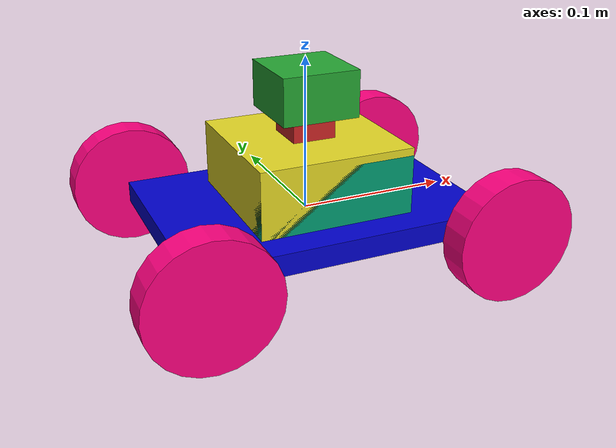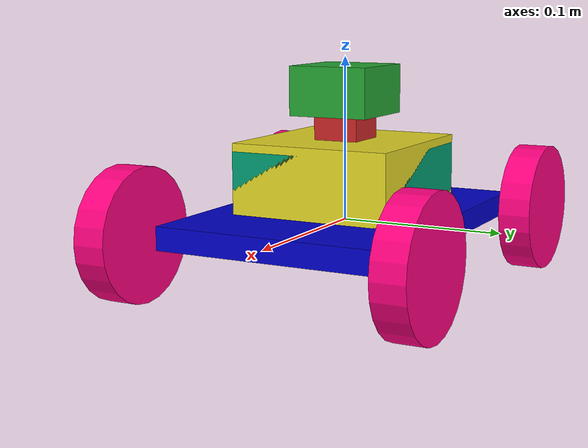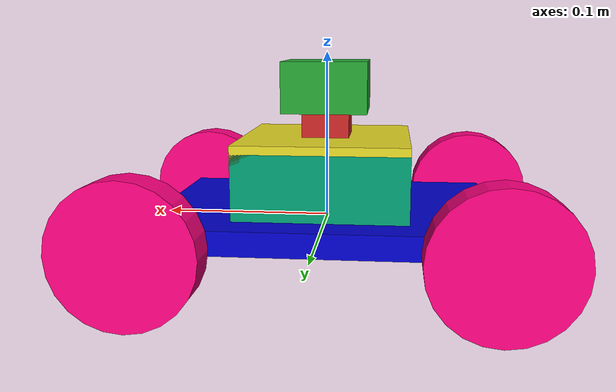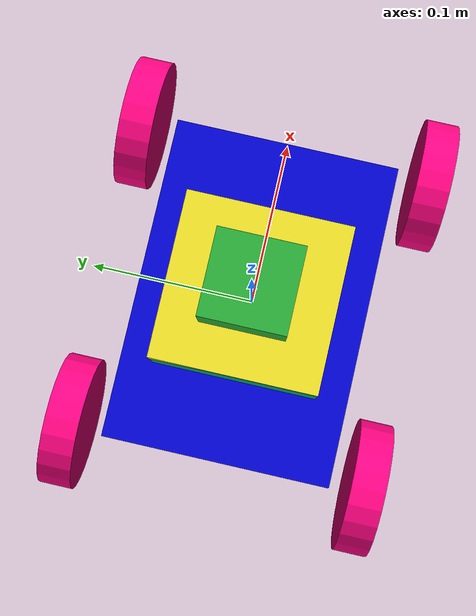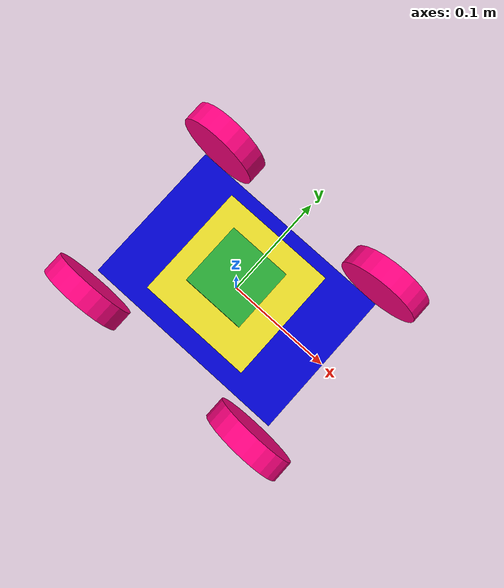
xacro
<?xml version="1.0"?>
<robot xmlns:xacro="http://www.ros.org/wiki/xacro" name="robot" >

<!-- property of base -->
<xacro:property name="base_link_size_x" value="0.2"/>
<xacro:property name="base_link_size_y" value="0.14"/>
<xacro:property name="base_link_size_z" value="0.014"/>

<xacro:property name="box_size_x" value="0.028"/>
<xacro:property name="box_size_y" value="0.028"/>
<xacro:property name="box_size_z" value="0.08"/>
<xacro:property name="box_joint_x" value="0.09"/>
<xacro:property name="box_joint_z" value="0.045"/>

<xacro:property name="wheel_rpy_p" value="1.57"/>
<xacro:property name="wheel_rpy_y" value="1.57"/>
<xacro:property name="wheel_length" value="0.02"/>
<xacro:property name="wheel_radius" value="0.04"/>
<xacro:property name="wheel_joint_x" value="0.095"/>
<xacro:property name="wheel_joint_y" value="0.09"/>

<xacro:property name="axis" value="1"/>
<xacro:property name="effort" value="300"/>
<xacro:property name="velocity" value="0.5"/>
<xacro:property name="lower" value="-3.14"/>
<xacro:property name="upper" value="3.14"/>
<!-- inertial box-->
<xacro:property name="mass_base" value="10"/>
<xacro:property name="I_base_xx" value="0.016"/>
<xacro:property name="I_base_yy" value="0.033"/>
<xacro:property name="I_base_zz" value="0.049"/>
<!-- inertial square-->
<xacro:property name="mass_square" value="1"/>
<xacro:property name="I_square_xx" value="0.00013"/>
<xacro:property name="I_square_yy" value="0.00013"/>
<xacro:property name="I_square_zz" value="0.00013"/>
<!-- inertial cylinder-->
<xacro:property name="mass_wheel" value="5"/>
<xacro:property name="I_wheel_xx" value="0.0021"/>
<xacro:property name="I_wheel_yy" value="0.004"/>
<xacro:property name="I_wheel_zz" value="0.0021"/>

<!-- inertial motor -->
<xacro:property name="mass_motor" value="1"/>
<xacro:property name="I_motor_xx" value="0.000014"/>
<xacro:property name="I_motor_yy" value="0.000012"/>
<xacro:property name="I_motor_zz" value="0.000014"/>

<!-- color in rviz-->
    <material name="blue">
      <color rgba="0 0 0.8 1"/>
    </material>
    <material name="pink">
      <color rgba="1 0 0.5 1"/>
    </material>
    <material name="green">
      <color rgba="0 1 0.5 1"/>
    </material>

<link name="dummy">

</link>

<joint name="dummy_base_link" type="fixed">
	<parent link="dummy"/>
	<child link="base_link"/>
</joint>

<link name="base_link">
	<visual>
		<origin rpy="0 0 0" xyz="0 0 0"/>
		<geometry>
			<box size="${base_link_size_x} ${base_link_size_y} ${base_link_size_z}"/>
		</geometry>
			    <material name="blue"/>
	</visual>
	<collision>
		<origin rpy="0 0 0" xyz="0 0 0"/>
		<geometry>
			<box size="${base_link_size_x} ${base_link_size_y} ${base_link_size_z}"/>
		</geometry>
			    <material name="blue"/>
	</collision>
	<inertial>
		<mass value="${mass_base}"/>
		<origin xyz="0 0 0"/>
		<inertia ixx="${I_base_xx}" ixy="0" ixz="0" iyy="${I_base_yy}" iyz="0" izz="${I_base_zz}"/>
	</inertial>

</link>

<link name="box">
   <visual>
     <origin rpy="0 0 0" xyz="0 0 0.02"/>
       <geometry>
         <box size="0.1 0.1 0.05"/>
       </geometry>
     </visual>
<collision>
		<origin rpy="0 0 0" xyz="0 0 0"/>
		<geometry>
			<box size="0.1 0.1 0.05"/>
		</geometry>

</collision>
	<inertial>
		<mass value="${mass_square}"/>
		<origin xyz="0 0 0"/>
		<inertia ixx="${I_square_xx}" ixy="0" ixz="0" iyy="${I_square_yy}" iyz="0" izz="${I_square_zz}"/>
	</inertial>
</link>

<link name="laser_scan">
	<visual>
		<origin rpy="0 0 0" xyz="0 0 0"/>
		<geometry>
			<box size="${box_size_x} ${box_size_y} ${box_size_z}"/>
		</geometry>

	</visual>
	<collision>
		<origin rpy="0 0 0" xyz="0 0 0"/>
		<geometry>
			<box size="${box_size_x} ${box_size_y} ${box_size_z}"/>
		</geometry>

	</collision>
	<inertial>
		<mass value="${mass_square}"/>
		<origin xyz="0 0 0"/>
		<inertia ixx="${I_square_xx}" ixy="0" ixz="0" iyy="${I_square_yy}" iyz="0" izz="${I_square_zz}"/>
	</inertial>
</link>

<link name="wheel_1">
	<visual>
		<origin rpy="0 ${wheel_rpy_p} ${wheel_rpy_y}" xyz="0 0 0"/>
		<geometry>
			<cylinder length="${wheel_length}" radius="${wheel_radius}"/>
		</geometry>
			<material name="pink"/>
	</visual>
	<collision>
		<origin rpy="0 ${wheel_rpy_p} ${wheel_rpy_y}" xyz="0 0 0"/>
		<geometry>
			<cylinder length="${wheel_length}" radius="${wheel_radius}"/>
		</geometry>
			<material name="pink"/>
	</collision>
	<inertial>
		<mass value="${mass_wheel}"/>
		<origin xyz="0 0 0"/>
		<inertia ixx="${I_wheel_xx}" ixy="0" ixz="0" iyy="${I_wheel_yy}" iyz="0" izz="${I_wheel_zz}"/>
	</inertial>
</link>
<link name="wheel_2">
	<visual>
		<origin rpy="0 ${wheel_rpy_p} ${wheel_rpy_y}" xyz="0 0 0"/>
		<geometry>
			<cylinder length="${wheel_length}" radius="${wheel_radius}"/>
		</geometry>
			<material name="pink"/>
	</visual>
	<collision>
		<origin rpy="0 ${wheel_rpy_p} ${wheel_rpy_y}" xyz="0 0 0"/>
		<geometry>
			<cylinder length="${wheel_length}" radius="${wheel_radius}"/>
		</geometry>
			<material name="pink"/>
	</collision>
	<inertial>
		<mass value="${mass_wheel}"/>
		<origin xyz="0 0 0"/>
		<inertia ixx="${I_wheel_xx}" ixy="0" ixz="0" iyy="${I_wheel_yy}" iyz="0" izz="${I_wheel_zz}"/>
	</inertial>
</link>
<link name="wheel_3">
	<visual>
		<origin rpy="0 ${wheel_rpy_p} ${wheel_rpy_y}" xyz="0 0 0"/>
		<geometry>
			<cylinder length="${wheel_length}" radius="${wheel_radius}"/>
		</geometry>
			<material name="pink"/>
	</visual>
	<collision>
		<origin rpy="0 ${wheel_rpy_p} ${wheel_rpy_y}" xyz="0 0 0"/>
		<geometry>
			<cylinder length="${wheel_length}" radius="${wheel_radius}"/>
		</geometry>
			<material name="pink"/>
	</collision>
	<inertial>
		<mass value="${mass_wheel}"/>
		<origin xyz="0 0 0"/>
		<inertia ixx="${I_wheel_xx}" ixy="0" ixz="0" iyy="${I_wheel_yy}" iyz="0" izz="${I_wheel_zz}"/>
	</inertial>
</link>
<link name="wheel_4">
	<visual>
		<origin rpy="0 ${wheel_rpy_p} ${wheel_rpy_y}" xyz="0 0 0"/>
		<geometry>
			<cylinder length="${wheel_length}" radius="${wheel_radius}"/>
		</geometry>
			<material name="pink"/>
	</visual>
	<collision>
		<origin rpy="0 ${wheel_rpy_p} ${wheel_rpy_y}" xyz="0 0 0"/>
		<geometry>
			<cylinder length="${wheel_length}" radius="${wheel_radius}"/>
		</geometry>
			<material name="pink"/>
	</collision>
	<inertial>
		<mass value="${mass_wheel}"/>

		<origin xyz="0 0 0"/>
		<inertia ixx="${I_wheel_xx}" ixy="0" ixz="0" iyy="${I_wheel_yy}" iyz="0" izz="${I_wheel_zz}"/>
	</inertial>
</link>

<joint name="box" type="fixed">
       <origin xyz="0 0 0"/>
       <parent link="base_link"/>
       <child link="box"/>
       <axis xyz="${axis} 0 0"/>
	<limit effort="${effort}" velocity="${velocity}" lower="${lower}" upper="${upper}"/>
</joint>

<joint name="laser_scan" type="fixed">
	<origin xyz="0 0 ${box_joint_z}"/>
	<parent link="box"/>
	<child link="laser_scan"/>
	<axis xyz="${axis} 0 0"/>
	<limit effort="${effort}" velocity="${velocity}" lower="${lower}" upper="${upper}"/>
</joint>

<joint name="base_wheel_1" type="continuous">
	<origin xyz="${wheel_joint_x} ${wheel_joint_y} 0"/>
	<parent link="base_link"/>
	<child link="wheel_1"/>
	<axis xyz="0 ${axis} 0"/>
	<limit effort="${effort}" velocity="${velocity}" lower="${lower}" upper="${upper}"/>
</joint>
<joint name="base_wheel_2" type="continuous">
	<origin xyz="-${wheel_joint_x} ${wheel_joint_y} 0"/>
	<parent link="base_link"/>
	<child link="wheel_2"/>
	<axis xyz="0 ${axis} 0"/>
	<limit effort="${effort}" velocity="${velocity}" lower="${lower}" upper="${upper}"/>
</joint>
<joint name="base_wheel_3" type="continuous">
	<origin xyz="-${wheel_joint_x} -${wheel_joint_y} 0"/>
	<parent link="base_link"/>
	<child link="wheel_3"/>
	<axis xyz="0 ${axis} 0"/>
	<limit effort="${effort}" velocity="${velocity}" lower="${lower}" upper="${upper}"/>
</joint>
<joint name="base_wheel_4" type="continuous">
	<origin xyz="${wheel_joint_x} -${wheel_joint_y} 0"/>
	<parent link="base_link"/>
	<child link="wheel_4"/>
	<axis xyz="0 ${axis} 0"/>
	<limit effort="${effort}" velocity="${velocity}" lower="${lower}" upper="${upper}"/>
</joint>

<!-- camera_scan-->
<link name="camera_scan">
	<visual>
	<origin rpy="0 0 0" xyz="0 0 0"/>
		<geometry>
			<box size="0.05 0.05 0.03"/>
		</geometry>
	</visual>
</link>
<joint name="base_link_camera_scan" type="fixed">
	<origin xyz="0.0 0.0 0.08"/>
	<parent link="box"/>
	<child link="camera_scan"/>
</joint>

<!-- imu_link-->
<link name="imu_scan">
	<visual>
	<origin rpy="0 0 0" xyz="0 0 0"/>
		<geometry>
			<box size="0.1 0.1 0.06"/>
		</geometry>
	</visual>
</link>
<joint name="base_link_IMU_scan" type="fixed">
	<origin xyz="0 0 0.02"/>
	<parent link="base_link"/>
	<child link="imu_scan"/>
</joint>

<!-- gazebo_view-->
<gazebo reference="base_link">
	<material>Gazebo/Black</material>
	<turnGravityOff>false</turnGravityOff>
</gazebo>

<!-- color in gazebo -->
<gazebo reference="base_link">
	<material>Gazebo/Black</material>
	<turnGravityOff>false</turnGravityOff>
</gazebo>
<gazebo>
	<plugin name="differential_drive_controller" filename="libgazebo_ros_diff_drive.so">
		<robotNameSpace>/</robotNameSpace>
		<commandTopic>cmd_vel</commandTopic>
		<odometryTopic>odom</odometryTopic>
		<odometryFrame>odom</odometryFrame>
		<robotBaseFrame>base_link</robotBaseFrame>
		<publishWheelTF>false</publishWheelTF>
		<publishOdomTF>true</publishOdomTF>
		<publishWheelJointState>false</publishWheelJointState>
		<legacyMode>true</legacyMode>

		<wheelSeparation>${2*base_link_size_y}</wheelSeparation>
		<wheelDiameter>${2*wheel_radius}</wheelDiameter>
		<wheelAcceleration>1.0</wheelAcceleration>
		<wheelTorque>20.0</wheelTorque>
		<updateRate>10.0</updateRate>
		<leftJoint>base_wheel_1</leftJoint>
		<leftJoint>base_wheel_2</leftJoint>
		<rightJoint>base_wheel_3</rightJoint>
		<rightJoint>base_wheel_4</rightJoint>
	</plugin>
</gazebo>

<gazebo reference="laser_scan">
	<material>Gazebo/Red</material>
	<turnGravityOff>true</turnGravityOff>
	<sensor type="ray" name="laser_scan_sensor">
		<pose> 0 0 0 0 0 0 </pose>
		<visualize>true</visualize>
		<update_rate>10.0</update_rate>
		<ray>
		<scan>
			<horizontal>
				<sample>500</sample>
				<resolution>1</resolution>
				<min_angle>-1.57</min_angle>
				<max_angle>1.57</max_angle>
			</horizontal>
		</scan>
		<range>
			<min>0.1</min>
			<max>10</max>
			<resolution>1</resolution>
		</range>
		</ray>

	<plugin name="laser_scanner" filename="libgazebo_ros_laser.so">
		<topicName>/scan</topicName>
		<frameName>laser_scan</frameName>
	</plugin>
	</sensor>
</gazebo>

<!-- camera plugin -->
  <gazebo reference="camera_scan">
  	<material>Gazebo/Green</material>
	<turnGravityOff>true</turnGravityOff>
    <sensor type="camera" name="camera1">
      <update_rate>30.0</update_rate>
      <camera name="head">
        <horizontal_fov>1.3962634</horizontal_fov>
        <image>
          <width>800</width>
          <height>800</height>
          <format>R8G8B8</format>
        </image>
        <clip>
          <near>0.02</near>
          <far>300</far>
        </clip>
        <noise>
          <type>gaussian</type>
          <!-- Noise is sampled independently per pixel on each frame.
               That pixel's noise value is added to each of its color
               channels, which at that point lie in the range [0,1]. -->
          <mean>0.0</mean>
          <stddev>0.007</stddev>
        </noise>
      </camera>
      <plugin name="camera_controller" filename="libgazebo_ros_camera.so">
        <alwaysOn>true</alwaysOn>
        <updateRate>0.0</updateRate>
        <cameraName>rrbot/camera1</cameraName>
        <imageTopicName>image_raw</imageTopicName>
        <cameraInfoTopicName>camera_info</cameraInfoTopicName>
        <frameName>camera_scan</frameName>
        <hackBaseline>0.07</hackBaseline>
        <distortionK1>0.0</distortionK1>
        <distortionK2>0.0</distortionK2>
        <distortionK3>0.0</distortionK3>
        <distortionT1>0.0</distortionT1>
        <distortionT2>0.0</distortionT2>
      </plugin>
    </sensor>
  </gazebo>

<gazebo reference="imu_scan">
 <material>Gazebo/Yellow</material>
 <turnGravityOff>true</turnGravityOff>
    <gravity>true</gravity>
    <sensor name="imu_sensor" type="imu">
      <always_on>true</always_on>
      <update_rate>100</update_rate>
      <visualize>true</visualize>
      <topic>__default_topic__</topic>
      <plugin name="imu_plugin" filename="liboxbgazebo_ros_imu_sensor.so" >
        <topicName>imu</topicName>
        <bodyName>imu_scan</bodyName>
        <updateRateHZ>10.0</updateRateHZ>
        <gaussianNoise>0.0</gaussianNoise>
        <xyzOffset>0 0 0</xyzOffset>
        <rpyOffset>0 0 0</rpyOffset>
        <frameName>imu_scan</frameName>
        <initialOrientationAsReference>false</initialOrientationAsReference>
      </plugin>
      <pose>0 0 0 0 0 0</pose>
    </sensor>
  </gazebo>

</robot>
